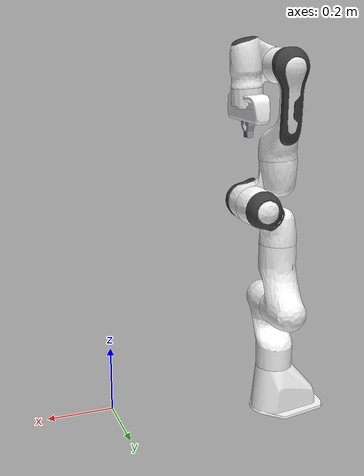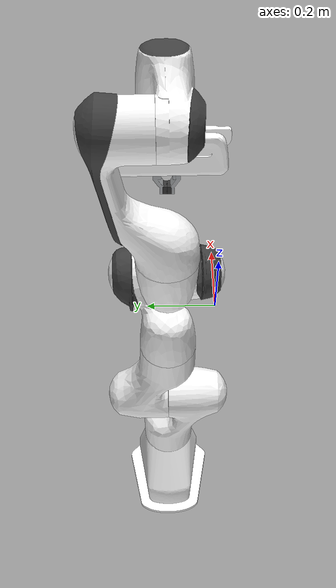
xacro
<?xml version="1.0"?>
<robot xmlns:xacro="http://www.ros.org/wiki/xacro" name="Franka">
    <xacro:arg name="initial_positions_file" default="initial_positions.yaml" />

    <!-- Import Franka urdf file -->
    <xacro:include filename="$(find cs_hardware_interface)/urdf/exported_panda.urdf" />

    <!-- Import control_xacro -->
    <xacro:include filename="Franka.ros2_control.xacro" />

    <xacro:Franka_ros2_control name="CoppeliaSimSystem" initial_positions_file="$(arg initial_positions_file)"/>

</robot>

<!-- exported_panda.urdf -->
<robot name="Franka">
    <link name="robot_base">
        <collision name="Franka">
            <origin xyz="-0.516000 0.150000 0.070000" rpy="-3.141593 3.141593 -3.141593" />
            <geometry>
                <mesh filename="file:///home/rosqiu/coppelia_control/src/cs_hardware_interface/urdf/exported_panda_robot_base_coll_1.dae" />
            </geometry>
        </collision>
        <visual name="link">
            <origin xyz="-0.516000 0.150000 0.070000" rpy="-3.141593 3.141593 -3.141593" />
            <geometry>
                <mesh filename="file:///home/rosqiu/coppelia_control/src/cs_hardware_interface/urdf/exported_panda_link_vis_1.dae" />
            </geometry>
            <material name="link_material">
                <color rgba="1.000000 1.000000 1.000000 1.0" />
            </material>
        </visual>
    </link>
    <joint name="panda_joint1" type="revolute">
        <axis xyz="0 0 1" />
        <limit velocity="2.1749997138977" lower="-2.8972465991974" effort="87.0" upper="2.8972465991974" />
        <parent link="robot_base" />
        <child link="link2_resp" />
        <origin xyz="-0.474729 0.150012 0.000000" rpy="-3.141593 3.141593 -3.141593" />
    </joint>
    <link name="link2_resp">
        <inertial>
            <origin xyz="0.000027 -0.031145 0.262891" rpy="-3.141593 3.141593 -3.141593" />
            <inertia ixy="1.8036869099987e-05" ixx="0.23965416449794" izz="0.096472146190744" iyz="0.046543293301451" iyy="0.20795149177852" ixz="1.3128335716866e-05" />
            <mass value="4.9706840515137" />
        </inertial>
        <collision name="link2_resp">
            <origin xyz="0.000023 -0.037262 0.263822" rpy="-3.141593 3.141593 -3.141593" />
            <geometry>
                <mesh filename="file:///home/rosqiu/coppelia_control/src/cs_hardware_interface/urdf/exported_panda_link2_resp_coll_1.dae" />
            </geometry>
        </collision>
        <collision name="link2_resp">
            <origin xyz="0.000023 -0.037262 0.263822" rpy="-3.141593 3.141593 -3.141593" />
            <geometry>
                <mesh filename="file:///home/rosqiu/coppelia_control/src/cs_hardware_interface/urdf/exported_panda_link2_resp_coll_2.dae" />
            </geometry>
        </collision>
        <collision name="link2_resp">
            <origin xyz="0.000023 -0.037262 0.263822" rpy="-3.141593 3.141593 -3.141593" />
            <geometry>
                <mesh filename="file:///home/rosqiu/coppelia_control/src/cs_hardware_interface/urdf/exported_panda_link2_resp_coll_3.dae" />
            </geometry>
        </collision>
        <collision name="link2_resp">
            <origin xyz="0.000023 -0.037262 0.263822" rpy="-3.141593 3.141593 -3.141593" />
            <geometry>
                <mesh filename="file:///home/rosqiu/coppelia_control/src/cs_hardware_interface/urdf/exported_panda_link2_resp_coll_4.dae" />
            </geometry>
        </collision>
        <visual name="link">
            <origin xyz="0.000023 -0.037242 0.263855" rpy="-3.141593 3.141593 -3.141593" />
            <geometry>
                <mesh filename="file:///home/rosqiu/coppelia_control/src/cs_hardware_interface/urdf/exported_panda_link_2_vis_1.dae" />
            </geometry>
            <material name="link_2_material">
                <color rgba="1.000000 1.000000 1.000000 1.0" />
            </material>
        </visual>
    </link>
    <joint name="panda_joint2" type="revolute">
        <axis xyz="0 0 1" />
        <limit velocity="2.1749997138977" lower="-1.7627825737" effort="87.0" upper="1.7627825737" />
        <parent link="link2_resp" />
        <child link="link3_resp" />
        <origin xyz="-0.000000 -0.000000 0.333000" rpy="1.570796 3.141593 3.141593" />
    </joint>
    <link name="link3_resp">
        <inertial>
            <origin xyz="0.000012 -0.070031 0.031073" rpy="-1.570796 3.141593 -3.141593" />
            <inertia ixy="4.6746993616892e-06" ixx="0.021097005907894" izz="0.0083947222563338" iyz="0.0040788476591549" iyy="0.018332235221749" ixz="-9.6899135443004e-07" />
            <mass value="0.64692598581314" />
        </inertial>
        <collision name="link3_resp">
            <origin xyz="0.000013 -0.069030 0.037184" rpy="-1.570796 3.141593 -3.141593" />
            <geometry>
                <mesh filename="file:///home/rosqiu/coppelia_control/src/cs_hardware_interface/urdf/exported_panda_link3_resp_coll_1.dae" />
            </geometry>
        </collision>
        <collision name="link3_resp">
            <origin xyz="0.000013 -0.069030 0.037184" rpy="-1.570796 3.141593 -3.141593" />
            <geometry>
                <mesh filename="file:///home/rosqiu/coppelia_control/src/cs_hardware_interface/urdf/exported_panda_link3_resp_coll_2.dae" />
            </geometry>
        </collision>
        <visual name="link">
            <origin xyz="-0.000003 -0.069076 0.037184" rpy="-1.570796 3.141593 -3.141593" />
            <geometry>
                <mesh filename="file:///home/rosqiu/coppelia_control/src/cs_hardware_interface/urdf/exported_panda_link_3_vis_1.dae" />
            </geometry>
            <material name="link_3_material">
                <color rgba="1.000000 1.000000 1.000000 1.0" />
            </material>
        </visual>
    </link>
    <joint name="panda_joint3" type="revolute">
        <axis xyz="0 0 1" />
        <limit velocity="2.1749997138977" lower="-2.8972465991974" effort="87.0" upper="2.8972465991974" />
        <parent link="link3_resp" />
        <child link="link4_resp" />
        <origin xyz="-0.000000 0.000000 0.000000" rpy="-1.570797 3.141593 -3.141593" />
    </joint>
    <link name="link4_resp">
        <inertial>
            <origin xyz="0.044418 0.025018 0.276461" rpy="-3.141592 3.141593 3.141593" />
            <inertia ixy="-0.0071662360347711" ixx="0.037043165158734" izz="0.037313700213202" iyz="-0.0066345366154784" iyy="0.044600332011806" ixz="-0.012283585683442" />
            <mass value="3.2286040782928" />
        </inertial>
        <collision name="link4_resp">
            <origin xyz="0.041373 0.028168 0.281765" rpy="-3.141592 3.141593 3.141593" />
            <geometry>
                <mesh filename="file:///home/rosqiu/coppelia_control/src/cs_hardware_interface/urdf/exported_panda_link4_resp_coll_1.dae" />
            </geometry>
        </collision>
        <collision name="link4_resp">
            <origin xyz="0.041373 0.028168 0.281765" rpy="-3.141592 3.141593 3.141593" />
            <geometry>
                <mesh filename="file:///home/rosqiu/coppelia_control/src/cs_hardware_interface/urdf/exported_panda_link4_resp_coll_2.dae" />
            </geometry>
        </collision>
        <collision name="link4_resp">
            <origin xyz="0.041373 0.028168 0.281765" rpy="-3.141592 3.141593 3.141593" />
            <geometry>
                <mesh filename="file:///home/rosqiu/coppelia_control/src/cs_hardware_interface/urdf/exported_panda_link4_resp_coll_3.dae" />
            </geometry>
        </collision>
        <collision name="link4_resp">
            <origin xyz="0.041373 0.028168 0.281765" rpy="-3.141592 3.141593 3.141593" />
            <geometry>
                <mesh filename="file:///home/rosqiu/coppelia_control/src/cs_hardware_interface/urdf/exported_panda_link4_resp_coll_4.dae" />
            </geometry>
        </collision>
        <visual name="link">
            <origin xyz="0.041158 0.028089 0.281656" rpy="-3.141592 3.141593 -3.141593" />
            <geometry>
                <mesh filename="file:///home/rosqiu/coppelia_control/src/cs_hardware_interface/urdf/exported_panda_link_4_vis_1.dae" />
            </geometry>
            <material name="link_4_material">
                <color rgba="1.000000 1.000000 1.000000 1.0" />
            </material>
        </visual>
        <visual name="link">
            <origin xyz="0.041158 0.028089 0.281656" rpy="-3.141592 3.141593 -3.141593" />
            <geometry>
                <mesh filename="file:///home/rosqiu/coppelia_control/src/cs_hardware_interface/urdf/exported_panda_link_4_vis_2.dae" />
            </geometry>
            <material name="link_4_material">
                <color rgba="0.250000 0.250000 0.250000 1.0" />
            </material>
        </visual>
    </link>
    <joint name="panda_joint4" type="revolute">
        <axis xyz="0 0 1" />
        <limit velocity="2.1749997138977" lower="-3.0019662380219" effort="87.0" upper="0.0" />
        <parent link="link4_resp" />
        <child link="link5_resp" />
        <origin xyz="0.082500 -0.000000 0.316000" rpy="-1.570796 3.141593 -3.141592" />
    </joint>
    <link name="link5_resp">
        <inertial>
            <origin xyz="-0.036035 0.041072 0.024354" rpy="1.570796 3.141593 3.071779" />
            <inertia ixy="0.0091601974989418" ixx="0.04844892193307" izz="0.047764716548773" iyz="-0.0086501440884625" iyy="0.05816570900911" ixz="0.016026606898086" />
            <mass value="3.5878949165344" />
        </inertial>
        <collision name="link5_resp">
            <origin xyz="-0.038916 0.036337 0.027506" rpy="1.570796 3.141593 3.071779" />
            <geometry>
                <mesh filename="file:///home/rosqiu/coppelia_control/src/cs_hardware_interface/urdf/exported_panda_link5_resp_coll_1.dae" />
            </geometry>
        </collision>
        <collision name="link5_resp">
            <origin xyz="-0.038916 0.036337 0.027506" rpy="1.570796 3.141593 3.071779" />
            <geometry>
                <mesh filename="file:///home/rosqiu/coppelia_control/src/cs_hardware_interface/urdf/exported_panda_link5_resp_coll_2.dae" />
            </geometry>
        </collision>
        <collision name="link5_resp">
            <origin xyz="-0.038916 0.036337 0.027506" rpy="1.570796 3.141593 3.071779" />
            <geometry>
                <mesh filename="file:///home/rosqiu/coppelia_control/src/cs_hardware_interface/urdf/exported_panda_link5_resp_coll_3.dae" />
            </geometry>
        </collision>
        <collision name="link5_resp">
            <origin xyz="-0.038916 0.036337 0.027506" rpy="1.570796 3.141593 3.071779" />
            <geometry>
                <mesh filename="file:///home/rosqiu/coppelia_control/src/cs_hardware_interface/urdf/exported_panda_link5_resp_coll_4.dae" />
            </geometry>
        </collision>
        <collision name="link5_resp">
            <origin xyz="-0.038916 0.036337 0.027506" rpy="1.570796 3.141593 3.071779" />
            <geometry>
                <mesh filename="file:///home/rosqiu/coppelia_control/src/cs_hardware_interface/urdf/exported_panda_link5_resp_coll_5.dae" />
            </geometry>
        </collision>
        <collision name="link5_resp">
            <origin xyz="-0.038916 0.036337 0.027506" rpy="1.570796 3.141593 3.071779" />
            <geometry>
                <mesh filename="file:///home/rosqiu/coppelia_control/src/cs_hardware_interface/urdf/exported_panda_link5_resp_coll_6.dae" />
            </geometry>
        </collision>
        <visual name="link">
            <origin xyz="-0.039111 0.036345 0.027485" rpy="1.570796 3.141593 3.071779" />
            <geometry>
                <mesh filename="file:///home/rosqiu/coppelia_control/src/cs_hardware_interface/urdf/exported_panda_link_5_vis_1.dae" />
            </geometry>
            <material name="link_5_material">
                <color rgba="1.000000 1.000000 1.000000 1.0" />
            </material>
        </visual>
        <visual name="link">
            <origin xyz="-0.039111 0.036345 0.027485" rpy="1.570796 3.141593 3.071779" />
            <geometry>
                <mesh filename="file:///home/rosqiu/coppelia_control/src/cs_hardware_interface/urdf/exported_panda_link_5_vis_2.dae" />
            </geometry>
            <material name="link_5_material">
                <color rgba="0.250000 0.250000 0.250000 1.0" />
            </material>
        </visual>
    </link>
    <joint name="panda_joint5" type="revolute">
        <axis xyz="0 0 1" />
        <limit velocity="2.610000371933" lower="-2.8972465991974" effort="12.0" upper="2.8972465991974" />
        <parent link="link5_resp" />
        <child link="link6_resp" />
        <origin xyz="-0.055513 0.388820 -0.000000" rpy="1.570796 3.141593 3.071779" />
    </joint>
    <link name="link6_resp">
        <inertial>
            <origin xyz="0.000101 0.038651 -0.110916" rpy="3.141593 3.141592 3.141592" />
            <inertia ixy="6.5734913571839e-07" ixx="0.03988537400492" izz="0.010430599214868" iyz="-0.0078141474579038" iyy="0.036230106859883" ixz="-2.672442414716e-05" />
            <mass value="1.2259459495544" />
        </inertial>
        <collision name="link6_resp">
            <origin xyz="0.000168 0.037213 -0.105096" rpy="3.141593 3.141592 3.141592" />
            <geometry>
                <mesh filename="file:///home/rosqiu/coppelia_control/src/cs_hardware_interface/urdf/exported_panda_link6_resp_coll_1.dae" />
            </geometry>
        </collision>
        <collision name="link6_resp">
            <origin xyz="0.000168 0.037213 -0.105096" rpy="3.141593 3.141592 3.141592" />
            <geometry>
                <mesh filename="file:///home/rosqiu/coppelia_control/src/cs_hardware_interface/urdf/exported_panda_link6_resp_coll_2.dae" />
            </geometry>
        </collision>
        <collision name="link6_resp">
            <origin xyz="0.000168 0.037213 -0.105096" rpy="3.141593 3.141592 3.141592" />
            <geometry>
                <mesh filename="file:///home/rosqiu/coppelia_control/src/cs_hardware_interface/urdf/exported_panda_link6_resp_coll_3.dae" />
            </geometry>
        </collision>
        <collision name="link6_resp">
            <origin xyz="0.000168 0.037213 -0.105096" rpy="3.141593 3.141592 3.141592" />
            <geometry>
                <mesh filename="file:///home/rosqiu/coppelia_control/src/cs_hardware_interface/urdf/exported_panda_link6_resp_coll_4.dae" />
            </geometry>
        </collision>
        <collision name="link6_resp">
            <origin xyz="0.000168 0.037213 -0.105096" rpy="3.141593 3.141592 3.141592" />
            <geometry>
                <mesh filename="file:///home/rosqiu/coppelia_control/src/cs_hardware_interface/urdf/exported_panda_link6_resp_coll_5.dae" />
            </geometry>
        </collision>
        <collision name="link6_resp">
            <origin xyz="0.000168 0.037213 -0.105096" rpy="3.141593 3.141592 3.141592" />
            <geometry>
                <mesh filename="file:///home/rosqiu/coppelia_control/src/cs_hardware_interface/urdf/exported_panda_link6_resp_coll_6.dae" />
            </geometry>
        </collision>
        <collision name="link6_resp">
            <origin xyz="0.000168 0.037213 -0.105096" rpy="3.141593 3.141592 3.141592" />
            <geometry>
                <mesh filename="file:///home/rosqiu/coppelia_control/src/cs_hardware_interface/urdf/exported_panda_link6_resp_coll_7.dae" />
            </geometry>
        </collision>
        <collision name="link6_resp">
            <origin xyz="0.000168 0.037213 -0.105096" rpy="3.141593 3.141592 3.141592" />
            <geometry>
                <mesh filename="file:///home/rosqiu/coppelia_control/src/cs_hardware_interface/urdf/exported_panda_link6_resp_coll_8.dae" />
            </geometry>
        </collision>
        <collision name="link6_resp">
            <origin xyz="0.000168 0.037213 -0.105096" rpy="3.141593 3.141592 3.141592" />
            <geometry>
                <mesh filename="file:///home/rosqiu/coppelia_control/src/cs_hardware_interface/urdf/exported_panda_link6_resp_coll_9.dae" />
            </geometry>
        </collision>
        <visual name="link">
            <origin xyz="-0.000025 0.037473 -0.105129" rpy="3.141593 3.141592 3.141592" />
            <geometry>
                <mesh filename="file:///home/rosqiu/coppelia_control/src/cs_hardware_interface/urdf/exported_panda_link_6_vis_1.dae" />
            </geometry>
            <material name="link_6_material">
                <color rgba="1.000000 1.000000 1.000000 1.0" />
            </material>
        </visual>
        <visual name="link">
            <origin xyz="-0.000025 0.037473 -0.105129" rpy="3.141593 3.141592 3.141592" />
            <geometry>
                <mesh filename="file:///home/rosqiu/coppelia_control/src/cs_hardware_interface/urdf/exported_panda_link_6_vis_2.dae" />
            </geometry>
            <material name="link_6_material">
                <color rgba="0.250000 0.250000 0.250000 1.0" />
            </material>
        </visual>
    </link>
    <joint name="panda_joint6" type="revolute">
        <axis xyz="0 0 1" />
        <limit velocity="2.610000371933" lower="-0.017453292384744" effort="12.0" upper="3.7524577584118" />
        <parent link="link6_resp" />
        <child link="link7_resp" />
        <origin xyz="-0.000000 -0.000000 0.000000" rpy="-1.570796 3.141593 -3.141593" />
    </joint>
    <link name="link7_resp">
        <inertial>
            <origin xyz="0.050819 0.005558 0.005395" rpy="1.570796 3.141593 3.141593" />
            <inertia ixy="-0.00057744119112155" ixx="0.0046587251169735" izz="0.0070729035771789" iyz="-6.1476550160376e-05" iyy="0.008643924526682" ixz="-0.00030740988325929" />
            <mass value="1.6665550470352" />
        </inertial>
        <collision name="link7_resp">
            <origin xyz="0.042191 0.013607 0.005347" rpy="1.570796 3.141593 3.141593" />
            <geometry>
                <mesh filename="file:///home/rosqiu/coppelia_control/src/cs_hardware_interface/urdf/exported_panda_link7_resp_coll_1.dae" />
            </geometry>
        </collision>
        <collision name="link7_resp">
            <origin xyz="0.042191 0.013607 0.005347" rpy="1.570796 3.141593 3.141593" />
            <geometry>
                <mesh filename="file:///home/rosqiu/coppelia_control/src/cs_hardware_interface/urdf/exported_panda_link7_resp_coll_2.dae" />
            </geometry>
        </collision>
        <collision name="link7_resp">
            <origin xyz="0.042191 0.013607 0.005347" rpy="1.570796 3.141593 3.141593" />
            <geometry>
                <mesh filename="file:///home/rosqiu/coppelia_control/src/cs_hardware_interface/urdf/exported_panda_link7_resp_coll_3.dae" />
            </geometry>
        </collision>
        <collision name="link7_resp">
            <origin xyz="0.042191 0.013607 0.005347" rpy="1.570796 3.141593 3.141593" />
            <geometry>
                <mesh filename="file:///home/rosqiu/coppelia_control/src/cs_hardware_interface/urdf/exported_panda_link7_resp_coll_4.dae" />
            </geometry>
        </collision>
        <collision name="link7_resp">
            <origin xyz="0.042191 0.013607 0.005347" rpy="1.570796 3.141593 3.141593" />
            <geometry>
                <mesh filename="file:///home/rosqiu/coppelia_control/src/cs_hardware_interface/urdf/exported_panda_link7_resp_coll_5.dae" />
            </geometry>
        </collision>
        <collision name="link7_resp">
            <origin xyz="0.042191 0.013607 0.005347" rpy="1.570796 3.141593 3.141593" />
            <geometry>
                <mesh filename="file:///home/rosqiu/coppelia_control/src/cs_hardware_interface/urdf/exported_panda_link7_resp_coll_6.dae" />
            </geometry>
        </collision>
        <collision name="link7_resp">
            <origin xyz="0.042191 0.013607 0.005347" rpy="1.570796 3.141593 3.141593" />
            <geometry>
                <mesh filename="file:///home/rosqiu/coppelia_control/src/cs_hardware_interface/urdf/exported_panda_link7_resp_coll_7.dae" />
            </geometry>
        </collision>
        <collision name="link7_resp">
            <origin xyz="0.042191 0.013607 0.005347" rpy="1.570796 3.141593 3.141593" />
            <geometry>
                <mesh filename="file:///home/rosqiu/coppelia_control/src/cs_hardware_interface/urdf/exported_panda_link7_resp_coll_8.dae" />
            </geometry>
        </collision>
        <collision name="link7_resp">
            <origin xyz="0.042191 0.013607 0.005347" rpy="1.570796 3.141593 3.141593" />
            <geometry>
                <mesh filename="file:///home/rosqiu/coppelia_control/src/cs_hardware_interface/urdf/exported_panda_link7_resp_coll_9.dae" />
            </geometry>
        </collision>
        <collision name="link7_resp">
            <origin xyz="0.042191 0.013607 0.005347" rpy="1.570796 3.141593 3.141593" />
            <geometry>
                <mesh filename="file:///home/rosqiu/coppelia_control/src/cs_hardware_interface/urdf/exported_panda_link7_resp_coll_10.dae" />
            </geometry>
        </collision>
        <collision name="link7_resp">
            <origin xyz="0.042191 0.013607 0.005347" rpy="1.570796 3.141593 3.141593" />
            <geometry>
                <mesh filename="file:///home/rosqiu/coppelia_control/src/cs_hardware_interface/urdf/exported_panda_link7_resp_coll_11.dae" />
            </geometry>
        </collision>
        <collision name="link7_resp">
            <origin xyz="0.042191 0.013607 0.005347" rpy="1.570796 3.141593 3.141593" />
            <geometry>
                <mesh filename="file:///home/rosqiu/coppelia_control/src/cs_hardware_interface/urdf/exported_panda_link7_resp_coll_12.dae" />
            </geometry>
        </collision>
        <collision name="link7_resp">
            <origin xyz="0.042191 0.013607 0.005347" rpy="1.570796 3.141593 3.141593" />
            <geometry>
                <mesh filename="file:///home/rosqiu/coppelia_control/src/cs_hardware_interface/urdf/exported_panda_link7_resp_coll_13.dae" />
            </geometry>
        </collision>
        <collision name="link7_resp">
            <origin xyz="0.042191 0.013607 0.005347" rpy="1.570796 3.141593 3.141593" />
            <geometry>
                <mesh filename="file:///home/rosqiu/coppelia_control/src/cs_hardware_interface/urdf/exported_panda_link7_resp_coll_14.dae" />
            </geometry>
        </collision>
        <collision name="link7_resp">
            <origin xyz="0.042191 0.013607 0.005347" rpy="1.570796 3.141593 3.141593" />
            <geometry>
                <mesh filename="file:///home/rosqiu/coppelia_control/src/cs_hardware_interface/urdf/exported_panda_link7_resp_coll_15.dae" />
            </geometry>
        </collision>
        <collision name="link7_resp">
            <origin xyz="0.042191 0.013607 0.005347" rpy="1.570796 3.141593 3.141593" />
            <geometry>
                <mesh filename="file:///home/rosqiu/coppelia_control/src/cs_hardware_interface/urdf/exported_panda_link7_resp_coll_16.dae" />
            </geometry>
        </collision>
        <visual name="link">
            <origin xyz="0.042086 0.013418 0.005372" rpy="1.570796 3.141593 3.141592" />
            <geometry>
                <mesh filename="file:///home/rosqiu/coppelia_control/src/cs_hardware_interface/urdf/exported_panda_link_7_vis_1.dae" />
            </geometry>
            <material name="link_7_material">
                <color rgba="1.000000 1.000000 1.000000 1.0" />
            </material>
        </visual>
        <visual name="link">
            <origin xyz="0.042086 0.013418 0.005372" rpy="1.570796 3.141593 3.141592" />
            <geometry>
                <mesh filename="file:///home/rosqiu/coppelia_control/src/cs_hardware_interface/urdf/exported_panda_link_7_vis_2.dae" />
            </geometry>
            <material name="link_7_material">
                <color rgba="0.250000 0.250000 0.250000 1.0" />
            </material>
        </visual>
    </link>
    <joint name="panda_joint7" type="revolute">
        <axis xyz="0 0 1" />
        <limit velocity="2.610000371933" lower="-2.8972465991974" effort="12.0" upper="2.8972465991974" />
        <parent link="link7_resp" />
        <child link="link8_resp" />
        <origin xyz="0.088000 0.000000 -0.000000" rpy="-1.570796 3.141592 3.141593" />
    </joint>
    <link name="link8_resp">
        <inertial>
            <origin xyz="-0.000077 -0.000876 0.078618" rpy="-0.000000 3.141593 -3.141592" />
            <inertia ixy="7.6321250755392e-11" ixx="0.0088670116631003" izz="0.01180331651387" iyz="-9.1760218741593e-08" iyy="0.0088670122123097" ixz="7.00227187462e-07" />
            <mass value="0.73552197217941" />
        </inertial>
        <collision name="link8_resp">
            <origin xyz="-0.000057 -0.000873 0.103159" rpy="0.000000 3.141593 -0.595144" />
            <geometry>
                <cylinder length="0.0095007419586182" radius="0.030879393219948" />
            </geometry>
        </collision>
        <collision name="link8_resp">
            <origin xyz="-0.000079 -0.000876 0.076009" rpy="-0.000002 3.141594 -2.065463" />
            <geometry>
                <cylinder length="0.045800685882568" radius="0.043132938444614" />
            </geometry>
        </collision>
        <visual name="link">
            <origin xyz="-0.000079 -0.000877 0.080509" rpy="-0.000000 3.141593 -3.141592" />
            <geometry>
                <mesh filename="file:///home/rosqiu/coppelia_control/src/cs_hardware_interface/urdf/exported_panda_link_8_vis_1.dae" />
            </geometry>
            <material name="link_8_material">
                <color rgba="1.000000 1.000000 1.000000 1.0" />
            </material>
        </visual>
    </link>
    <joint name="connection" type="fixed">
        <axis xyz="0 0 1" />
        <parent link="link8_resp" />
        <child link="FrankaGripper" />
        <origin xyz="-0.000271 0.000012 0.107001" rpy="3.141593 3.141593 -3.141592" />
    </joint>
    <link name="FrankaGripper">
        <inertial>
            <origin xyz="0.007993 0.005362 0.000301" rpy="-3.141593 3.141593 -3.141593" />
            <inertia ixy="-0.000236301420585" ixx="0.00055136998466875" izz="0.0005356164140933" iyz="-3.041173254942e-18" iyy="0.0005513698709592" ixz="6.4988166909013e-18" />
            <mass value="0.23000000417233" />
        </inertial>
        <collision name="FrankaGripper">
            <origin xyz="0.000000 0.000000 0.000000" rpy="-3.141593 3.141593 -3.141593" />
            <geometry>
                <mesh filename="file:///home/rosqiu/coppelia_control/src/cs_hardware_interface/urdf/exported_panda_FrankaGripper_coll_1.dae" />
            </geometry>
        </collision>
        <collision name="FrankaGripper">
            <origin xyz="0.000000 0.000000 0.000000" rpy="-3.141593 3.141593 -3.141593" />
            <geometry>
                <mesh filename="file:///home/rosqiu/coppelia_control/src/cs_hardware_interface/urdf/exported_panda_FrankaGripper_coll_2.dae" />
            </geometry>
        </collision>
        <collision name="FrankaGripper">
            <origin xyz="0.000000 0.000000 0.000000" rpy="-3.141593 3.141593 -3.141593" />
            <geometry>
                <mesh filename="file:///home/rosqiu/coppelia_control/src/cs_hardware_interface/urdf/exported_panda_FrankaGripper_coll_3.dae" />
            </geometry>
        </collision>
        <visual name="visible">
            <origin xyz="0.000000 0.001224 -0.002953" rpy="-3.141593 3.141593 -3.141593" />
            <geometry>
                <mesh filename="file:///home/rosqiu/coppelia_control/src/cs_hardware_interface/urdf/exported_panda_visible_vis_1.dae" />
            </geometry>
            <material name="visible_material">
                <color rgba="1.000000 1.000000 1.000000 1.0" />
            </material>
        </visual>
    </link>
    <joint name="centerJoint" type="prismatic">
        <axis xyz="0 0 1" />
        <limit velocity="0.10000000149012" lower="0.0" effort="20.0" upper="0.041000001132488" />
        <parent link="FrankaGripper" />
        <child link="leftFinger" />
        <origin xyz="0.000168 0.001495 0.074931" rpy="-1.571080 3.141811 3.141556" />
    </joint>
    <link name="leftFinger">
        <inertial>
            <origin xyz="0.000040 -0.024567 0.012277" rpy="-2.915859 4.704142 1.342121" />
            <inertia ixy="-1.0258588401084e-07" ixx="0.00018852426788335" izz="5.5836018162053e-05" iyz="2.6465682920481e-07" iyy="0.00018639074698225" ixz="6.9071240866037e-06" />
            <mass value="0.125" />
        </inertial>
        <collision name="leftFinger">
            <origin xyz="0.000080 -0.017999 0.012501" rpy="-2.915859 4.704142 1.342121" />
            <geometry>
                <mesh filename="file:///home/rosqiu/coppelia_control/src/cs_hardware_interface/urdf/exported_panda_leftFinger_coll_1.dae" />
            </geometry>
        </collision>
        <collision name="leftFinger">
            <origin xyz="0.000080 -0.017999 0.012501" rpy="-2.915859 4.704142 1.342121" />
            <geometry>
                <mesh filename="file:///home/rosqiu/coppelia_control/src/cs_hardware_interface/urdf/exported_panda_leftFinger_coll_2.dae" />
            </geometry>
        </collision>
        <collision name="leftFinger">
            <origin xyz="0.000080 -0.017999 0.012501" rpy="-2.915859 4.704142 1.342121" />
            <geometry>
                <mesh filename="file:///home/rosqiu/coppelia_control/src/cs_hardware_interface/urdf/exported_panda_leftFinger_coll_3.dae" />
            </geometry>
        </collision>
        <collision name="leftFinger">
            <origin xyz="0.000080 -0.017999 0.012501" rpy="-2.915859 4.704142 1.342121" />
            <geometry>
                <mesh filename="file:///home/rosqiu/coppelia_control/src/cs_hardware_interface/urdf/exported_panda_leftFinger_coll_4.dae" />
            </geometry>
        </collision>
        <collision name="leftFinger">
            <origin xyz="0.000080 -0.017999 0.012501" rpy="-2.915859 4.704142 1.342121" />
            <geometry>
                <mesh filename="file:///home/rosqiu/coppelia_control/src/cs_hardware_interface/urdf/exported_panda_leftFinger_coll_5.dae" />
            </geometry>
        </collision>
        <collision name="leftFinger">
            <origin xyz="0.000080 -0.017999 0.012501" rpy="-2.915859 4.704142 1.342121" />
            <geometry>
                <mesh filename="file:///home/rosqiu/coppelia_control/src/cs_hardware_interface/urdf/exported_panda_leftFinger_coll_6.dae" />
            </geometry>
        </collision>
        <collision name="leftFinger">
            <origin xyz="0.000080 -0.017999 0.012501" rpy="-2.915859 4.704142 1.342121" />
            <geometry>
                <mesh filename="file:///home/rosqiu/coppelia_control/src/cs_hardware_interface/urdf/exported_panda_leftFinger_coll_7.dae" />
            </geometry>
        </collision>
        <collision name="leftFinger">
            <origin xyz="0.000080 -0.017999 0.012501" rpy="-2.915859 4.704142 1.342121" />
            <geometry>
                <mesh filename="file:///home/rosqiu/coppelia_control/src/cs_hardware_interface/urdf/exported_panda_leftFinger_coll_8.dae" />
            </geometry>
        </collision>
        <collision name="leftFinger">
            <origin xyz="0.000080 -0.017999 0.012501" rpy="-2.915859 4.704142 1.342121" />
            <geometry>
                <mesh filename="file:///home/rosqiu/coppelia_control/src/cs_hardware_interface/urdf/exported_panda_leftFinger_coll_9.dae" />
            </geometry>
        </collision>
        <visual name="leftFinger_visible">
            <origin xyz="0.000031 -0.017953 0.012297" rpy="1.571080 3.141556 3.141374" />
            <geometry>
                <mesh filename="file:///home/rosqiu/coppelia_control/src/cs_hardware_interface/urdf/exported_panda_leftFinger_visible_vis_1.dae" />
            </geometry>
            <material name="leftFinger_visible_material">
                <color rgba="0.660000 0.670000 0.680000 1.0" />
            </material>
        </visual>
    </link>
    <joint name="leftFingerPad_connection" type="fixed">
        <axis xyz="0 0 1" />
        <parent link="leftFinger" />
        <child link="leftPad" />
        <origin xyz="0.000028 0.000055 0.006728" rpy="-0.000001 3.141593 -1.570796" />
    </joint>
    <link name="leftPad">
        <inertial>
            <origin xyz="-0.000346 0.000007 0.002414" rpy="1.575077 1.575863 0.007296" />
            <inertia ixy="1.6213889016144e-07" ixx="0.00016691092146122" izz="0.00010804066386562" iyz="2.2431666371765e-08" iyy="0.00010830756544703" ixz="4.1543267577368e-08" />
            <mass value="0.125" />
        </inertial>
        <collision name="leftPad">
            <origin xyz="-0.000078 0.000000 0.002456" rpy="1.575077 1.575863 0.007296" />
            <geometry>
                <mesh filename="file:///home/rosqiu/coppelia_control/src/cs_hardware_interface/urdf/exported_panda_leftPad_coll_1.dae" />
            </geometry>
        </collision>
        <visual name="leftPad_visible">
            <origin xyz="-0.000106 -0.000024 0.002434" rpy="-1.570513 3.141630 -1.570577" />
            <geometry>
                <mesh filename="file:///home/rosqiu/coppelia_control/src/cs_hardware_interface/urdf/exported_panda_leftPad_visible_vis_1.dae" />
            </geometry>
            <material name="leftPad_visible_material">
                <color rgba="0.200000 0.200000 0.200000 1.0" />
            </material>
        </visual>
    </link>
    <joint name="openCloseJoint" type="prismatic">
        <axis xyz="0 0 1" />
        <limit velocity="10.0" lower="0.0" effort="20.0" upper="0.082000002264977" />
        <parent link="leftFinger" />
        <child link="rightFinger" />
        <origin xyz="-0.000000 -0.000000 -0.000000" rpy="0.000033 3.141592 0.000000" />
    </joint>
    <link name="rightFinger">
        <inertial>
            <origin xyz="0.000022 -0.024520 0.011668" rpy="3.062975 1.579239 -1.647380" />
            <inertia ixy="3.8961991153265e-08" ixx="0.00018875818524776" izz="5.5596183740278e-05" iyz="-6.110250389809e-08" iyy="0.00018660159563509" ixz="-5.2355363902135e-06" />
            <mass value="0.125" />
        </inertial>
        <collision name="rightFinger">
            <origin xyz="0.000006 -0.017987 0.011625" rpy="3.062975 1.579239 -1.647380" />
            <geometry>
                <mesh filename="file:///home/rosqiu/coppelia_control/src/cs_hardware_interface/urdf/exported_panda_rightFinger_coll_1.dae" />
            </geometry>
        </collision>
        <collision name="rightFinger">
            <origin xyz="0.000006 -0.017987 0.011625" rpy="3.062975 1.579239 -1.647380" />
            <geometry>
                <mesh filename="file:///home/rosqiu/coppelia_control/src/cs_hardware_interface/urdf/exported_panda_rightFinger_coll_2.dae" />
            </geometry>
        </collision>
        <collision name="rightFinger">
            <origin xyz="0.000006 -0.017987 0.011625" rpy="3.062975 1.579239 -1.647380" />
            <geometry>
                <mesh filename="file:///home/rosqiu/coppelia_control/src/cs_hardware_interface/urdf/exported_panda_rightFinger_coll_3.dae" />
            </geometry>
        </collision>
        <collision name="rightFinger">
            <origin xyz="0.000006 -0.017987 0.011625" rpy="3.062975 1.579239 -1.647380" />
            <geometry>
                <mesh filename="file:///home/rosqiu/coppelia_control/src/cs_hardware_interface/urdf/exported_panda_rightFinger_coll_4.dae" />
            </geometry>
        </collision>
        <collision name="rightFinger">
            <origin xyz="0.000006 -0.017987 0.011625" rpy="3.062975 1.579239 -1.647380" />
            <geometry>
                <mesh filename="file:///home/rosqiu/coppelia_control/src/cs_hardware_interface/urdf/exported_panda_rightFinger_coll_5.dae" />
            </geometry>
        </collision>
        <collision name="rightFinger">
            <origin xyz="0.000006 -0.017987 0.011625" rpy="3.062975 1.579239 -1.647380" />
            <geometry>
                <mesh filename="file:///home/rosqiu/coppelia_control/src/cs_hardware_interface/urdf/exported_panda_rightFinger_coll_6.dae" />
            </geometry>
        </collision>
        <collision name="rightFinger">
            <origin xyz="0.000006 -0.017987 0.011625" rpy="3.062975 1.579239 -1.647380" />
            <geometry>
                <mesh filename="file:///home/rosqiu/coppelia_control/src/cs_hardware_interface/urdf/exported_panda_rightFinger_coll_7.dae" />
            </geometry>
        </collision>
        <collision name="rightFinger">
            <origin xyz="0.000006 -0.017987 0.011625" rpy="3.062975 1.579239 -1.647380" />
            <geometry>
                <mesh filename="file:///home/rosqiu/coppelia_control/src/cs_hardware_interface/urdf/exported_panda_rightFinger_coll_8.dae" />
            </geometry>
        </collision>
        <collision name="rightFinger">
            <origin xyz="0.000006 -0.017987 0.011625" rpy="3.062975 1.579239 -1.647380" />
            <geometry>
                <mesh filename="file:///home/rosqiu/coppelia_control/src/cs_hardware_interface/urdf/exported_panda_rightFinger_coll_9.dae" />
            </geometry>
        </collision>
        <visual name="rightFinger_visible">
            <origin xyz="0.000040 -0.018035 0.011413" rpy="-1.570480 3.141630 0.000219" />
            <geometry>
                <mesh filename="file:///home/rosqiu/coppelia_control/src/cs_hardware_interface/urdf/exported_panda_rightFinger_visible_vis_1.dae" />
            </geometry>
            <material name="rightFinger_visible_material">
                <color rgba="0.660000 0.670000 0.680000 1.0" />
            </material>
        </visual>
    </link>
    <joint name="rightFingerPad_connection" type="fixed">
        <axis xyz="0 0 1" />
        <parent link="rightFinger" />
        <child link="rightPad" />
        <origin xyz="-0.000102 0.000143 0.006578" rpy="0.000034 3.124728 1.574869" />
    </joint>
    <link name="rightPad">
        <inertial>
            <origin xyz="0.000346 -0.000006 0.002414" rpy="1.567081 4.707277 0.006731" />
            <inertia ixy="-1.6640883230316e-07" ixx="0.00016691049501109" izz="0.00010804302982103" iyz="-1.963717353832e-08" iyy="0.00010830547761067" ixz="4.1290464104407e-08" />
            <mass value="0.125" />
        </inertial>
        <collision name="rightPad">
            <origin xyz="0.000078 -0.000000 0.002457" rpy="1.567081 4.707277 0.006731" />
            <geometry>
                <mesh filename="file:///home/rosqiu/coppelia_control/src/cs_hardware_interface/urdf/exported_panda_rightPad_coll_1.dae" />
            </geometry>
        </collision>
        <visual name="rightPad_visible">
            <origin xyz="0.000155 -0.000007 0.002420" rpy="1.587977 3.141586 -1.566943" />
            <geometry>
                <mesh filename="file:///home/rosqiu/coppelia_control/src/cs_hardware_interface/urdf/exported_panda_rightPad_visible_vis_1.dae" />
            </geometry>
            <material name="rightPad_visible_material">
                <color rgba="0.200000 0.200000 0.200000 1.0" />
            </material>
        </visual>
    </link>
</robot>
